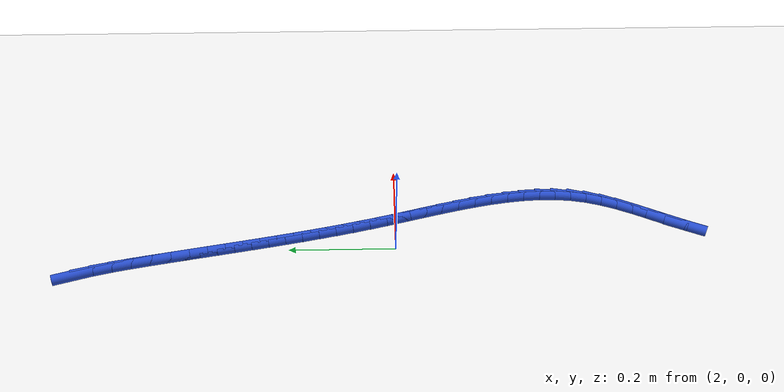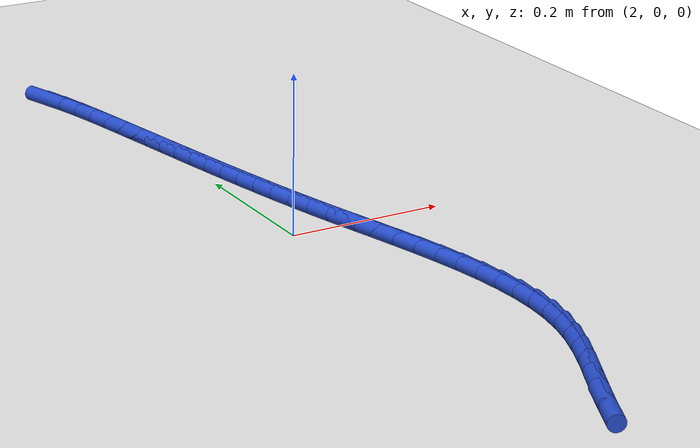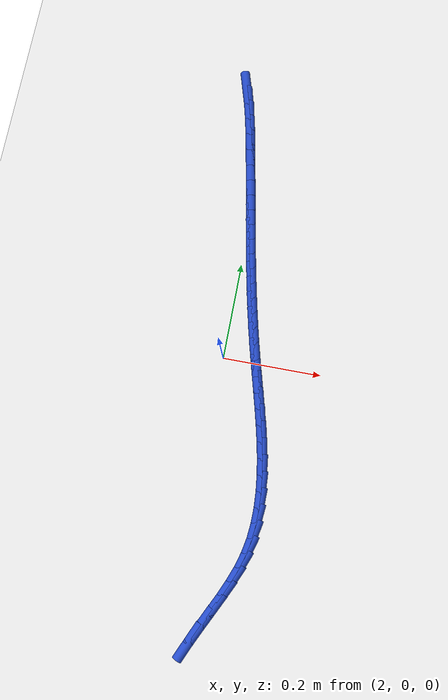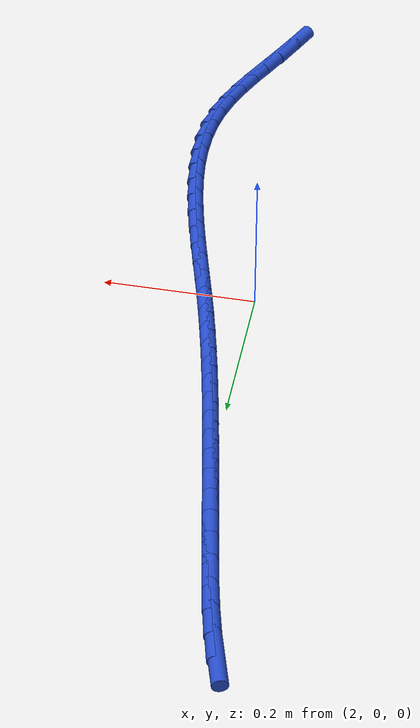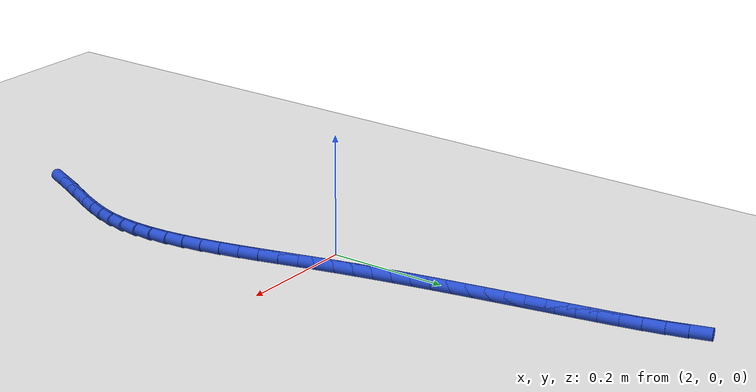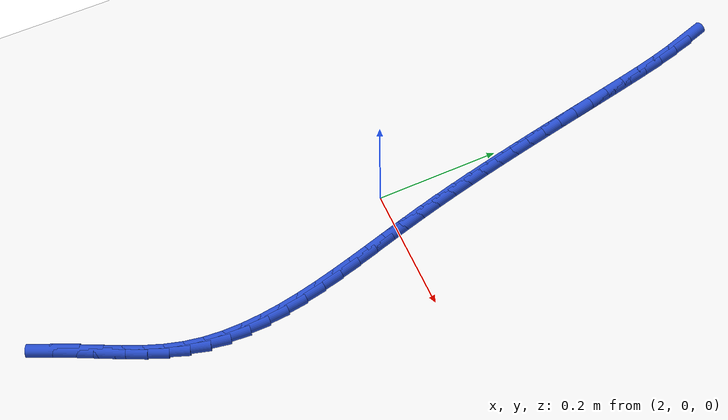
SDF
<sdf version="1.6">
 <world name="default">
  <model name="ground_plane">
   <static>1</static>
   <link name="link">
    <collision name="collision">
     <geometry><plane><normal>0 0 1</normal><size>100 100</size></plane></geometry>
     <surface><friction><ode><mu>100</mu><mu2>50</mu2></ode></friction></surface>
    </collision>
    <visual name="visual">
     <cast_shadows>0</cast_shadows>
     <geometry><plane><normal>0 0 1</normal><size>100 100</size></plane></geometry>
     <material>
      <script><uri>file://media/materials/scripts/gazebo.material</uri><name>Gazebo/WhiteGlow</name></script>
     </material>
    </visual>
   </link>
  </model>
  <model name="line">
   <link name="link_91">
    <pose>1.9389879505668395 0.5864188667553368 0.01 0 1.57 -1.278347036911987</pose>
    <collision name="collision">
     <geometry><cylinder><radius>0.01</radius><length>0.08</length></cylinder></geometry>
    </collision>
    <visual name="visual">
     <material>
      <script><name>Gazebo/Blue</name><uri>file://media/materials/scripts/gazebo.material</uri></script>
     </material>
     <geometry><cylinder><radius>0.01</radius><length>0.08</length></cylinder></geometry>
    </visual>
   </link>
   <link name="link_92">
    <pose>1.9487250232873312 0.5540786135675578 0.01 0 1.57 -1.3229789395118752</pose>
    <collision name="collision">
     <geometry><cylinder><radius>0.01</radius><length>0.08</length></cylinder></geometry>
    </collision>
    <visual name="visual">
     <material>
      <script><name>Gazebo/Blue</name><uri>file://media/materials/scripts/gazebo.material</uri></script>
     </material>
     <geometry><cylinder><radius>0.01</radius><length>0.08</length></cylinder></geometry>
    </visual>
   </link>
   <link name="link_93">
    <pose>1.9571148000112473 0.5209198384724876 0.01 0 1.57 -1.3539986342224388</pose>
    <collision name="collision">
     <geometry><cylinder><radius>0.01</radius><length>0.08</length></cylinder></geometry>
    </collision>
    <visual name="visual">
     <material>
      <script><name>Gazebo/Blue</name><uri>file://media/materials/scripts/gazebo.material</uri></script>
     </material>
     <geometry><cylinder><radius>0.01</radius><length>0.08</length></cylinder></geometry>
    </visual>
   </link>
   <link name="link_94">
    <pose>1.9645049247873123 0.4873679192102942 0.01 0 1.57 -1.3724204868753895</pose>
    <collision name="collision">
     <geometry><cylinder><radius>0.01</radius><length>0.08</length></cylinder></geometry>
    </collision>
    <visual name="visual">
     <material>
      <script><name>Gazebo/Blue</name><uri>file://media/materials/scripts/gazebo.material</uri></script>
     </material>
     <geometry><cylinder><radius>0.01</radius><length>0.08</length></cylinder></geometry>
    </visual>
   </link>
   <link name="link_95">
    <pose>1.9712430416642484 0.453848233521143 0.01 0 1.57 -1.3794987288052705</pose>
    <collision name="collision">
     <geometry><cylinder><radius>0.01</radius><length>0.08</length></cylinder></geometry>
    </collision>
    <visual name="visual">
     <material>
      <script><name>Gazebo/Blue</name><uri>file://media/materials/scripts/gazebo.material</uri></script>
     </material>
     <geometry><cylinder><radius>0.01</radius><length>0.08</length></cylinder></geometry>
    </visual>
   </link>
   <link name="link_96">
    <pose>1.977653616604843 0.4207470042130003 0.01 0 1.57 -1.382131423531816</pose>
    <collision name="collision">
     <geometry><cylinder><radius>0.01</radius><length>0.08</length></cylinder></geometry>
    </collision>
    <visual name="visual">
     <material>
      <script><name>Gazebo/Blue</name><uri>file://media/materials/scripts/gazebo.material</uri></script>
     </material>
     <geometry><cylinder><radius>0.01</radius><length>0.08</length></cylinder></geometry>
    </visual>
   </link>
   <link name="link_97">
    <pose>1.9838789415652713 0.3881427060383085 0.01 0 1.57 -1.3835404762668853</pose>
    <collision name="collision">
     <geometry><cylinder><radius>0.01</radius><length>0.08</length></cylinder></geometry>
    </collision>
    <visual name="visual">
     <material>
      <script><name>Gazebo/Blue</name><uri>file://media/materials/scripts/gazebo.material</uri></script>
     </material>
     <geometry><cylinder><radius>0.01</radius><length>0.08</length></cylinder></geometry>
    </visual>
   </link>
   <link name="link_98">
    <pose>1.9899751997754238 0.3559683495662806 0.01 0 1.57 -1.3836857713616606</pose>
    <collision name="collision">
     <geometry><cylinder><radius>0.01</radius><length>0.08</length></cylinder></geometry>
    </collision>
    <visual name="visual">
     <material>
      <script><name>Gazebo/Blue</name><uri>file://media/materials/scripts/gazebo.material</uri></script>
     </material>
     <geometry><cylinder><radius>0.01</radius><length>0.08</length></cylinder></geometry>
    </visual>
   </link>
   <link name="link_99">
    <pose>1.9959980630692573 0.3241560814607491 0.01 0 1.57 -1.3825226095366727</pose>
    <collision name="collision">
     <geometry><cylinder><radius>0.01</radius><length>0.08</length></cylinder></geometry>
    </collision>
    <visual name="visual">
     <material>
      <script><name>Gazebo/Blue</name><uri>file://media/materials/scripts/gazebo.material</uri></script>
     </material>
     <geometry><cylinder><radius>0.01</radius><length>0.08</length></cylinder></geometry>
    </visual>
   </link>
   <link name="link_100">
    <pose>2.0020032032807262 0.29263804838554486 0.01 0 1.57 -1.3800234249048318</pose>
    <collision name="collision">
     <geometry><cylinder><radius>0.01</radius><length>0.08</length></cylinder></geometry>
    </collision>
    <visual name="visual">
     <material>
      <script><name>Gazebo/Blue</name><uri>file://media/materials/scripts/gazebo.material</uri></script>
     </material>
     <geometry><cylinder><radius>0.01</radius><length>0.08</length></cylinder></geometry>
    </visual>
   </link>
   <link name="link_101">
    <pose>2.0080462922437876 0.26134639700450063 0.01 0 1.57 -1.3761793062768408</pose>
    <collision name="collision">
     <geometry><cylinder><radius>0.01</radius><length>0.08</length></cylinder></geometry>
    </collision>
    <visual name="visual">
     <material>
      <script><name>Gazebo/Blue</name><uri>file://media/materials/scripts/gazebo.material</uri></script>
     </material>
     <geometry><cylinder><radius>0.01</radius><length>0.08</length></cylinder></geometry>
    </visual>
   </link>
   <link name="link_102">
    <pose>2.0141830017923965 0.23021327398144711 0.01 0 1.57 -1.371000981717579</pose>
    <collision name="collision">
     <geometry><cylinder><radius>0.01</radius><length>0.08</length></cylinder></geometry>
    </collision>
    <visual name="visual">
     <material>
      <script><name>Gazebo/Blue</name><uri>file://media/materials/scripts/gazebo.material</uri></script>
     </material>
     <geometry><cylinder><radius>0.01</radius><length>0.08</length></cylinder></geometry>
    </visual>
   </link>
   <link name="link_103">
    <pose>2.020469003760509 0.19917082598021693 0.01 0 1.57 -1.3645191835083599</pose>
    <collision name="collision">
     <geometry><cylinder><radius>0.01</radius><length>0.08</length></cylinder></geometry>
    </collision>
    <visual name="visual">
     <material>
      <script><name>Gazebo/Blue</name><uri>file://media/materials/scripts/gazebo.material</uri></script>
     </material>
     <geometry><cylinder><radius>0.01</radius><length>0.08</length></cylinder></geometry>
    </visual>
   </link>
   <link name="link_104">
    <pose>2.026959969982081 0.16815119966464098 0.01 0 1.57 -1.356784339469159</pose>
    <collision name="collision">
     <geometry><cylinder><radius>0.01</radius><length>0.08</length></cylinder></geometry>
    </collision>
    <visual name="visual">
     <material>
      <script><name>Gazebo/Blue</name><uri>file://media/materials/scripts/gazebo.material</uri></script>
     </material>
     <geometry><cylinder><radius>0.01</radius><length>0.08</length></cylinder></geometry>
    </visual>
   </link>
   <link name="link_105">
    <pose>2.033711572291068 0.13708654169855172 0.01 0 1.57 -1.3478655726079094</pose>
    <collision name="collision">
     <geometry><cylinder><radius>0.01</radius><length>0.08</length></cylinder></geometry>
    </collision>
    <visual name="visual">
     <material>
      <script><name>Gazebo/Blue</name><uri>file://media/materials/scripts/gazebo.material</uri></script>
     </material>
     <geometry><cylinder><radius>0.01</radius><length>0.08</length></cylinder></geometry>
    </visual>
   </link>
   <link name="link_106">
    <pose>2.040779482521426 0.10590899874578016 0.01 0 1.57 -1.3378490320443401</pose>
    <collision name="collision">
     <geometry><cylinder><radius>0.01</radius><length>0.08</length></cylinder></geometry>
    </collision>
    <visual name="visual">
     <material>
      <script><name>Gazebo/Blue</name><uri>file://media/materials/scripts/gazebo.material</uri></script>
     </material>
     <geometry><cylinder><radius>0.01</radius><length>0.08</length></cylinder></geometry>
    </visual>
   </link>
   <link name="link_107">
    <pose>2.0482193725071105 0.07455071747015875 0.01 0 1.57 -1.3268356208044711</pose>
    <collision name="collision">
     <geometry><cylinder><radius>0.01</radius><length>0.08</length></cylinder></geometry>
    </collision>
    <visual name="visual">
     <material>
      <script><name>Gazebo/Blue</name><uri>file://media/materials/scripts/gazebo.material</uri></script>
     </material>
     <geometry><cylinder><radius>0.01</radius><length>0.08</length></cylinder></geometry>
    </visual>
   </link>
   <link name="link_108">
    <pose>2.056086914082078 0.0429438445355184 0.01 0 1.57 -1.314938864861613</pose>
    <collision name="collision">
     <geometry><cylinder><radius>0.01</radius><length>0.08</length></cylinder></geometry>
    </collision>
    <visual name="visual">
     <material>
      <script><name>Gazebo/Blue</name><uri>file://media/materials/scripts/gazebo.material</uri></script>
     </material>
     <geometry><cylinder><radius>0.01</radius><length>0.08</length></cylinder></geometry>
    </visual>
   </link>
   <link name="link_109">
    <pose>2.0644377542669865 0.01102053820125583 0.01 0 1.57 -1.3041430268347685</pose>
    <collision name="collision">
     <geometry><cylinder><radius>0.01</radius><length>0.08</length></cylinder></geometry>
    </collision>
    <visual name="visual">
     <material>
      <script><name>Gazebo/Blue</name><uri>file://media/materials/scripts/gazebo.material</uri></script>
     </material>
     <geometry><cylinder><radius>0.01</radius><length>0.08</length></cylinder></geometry>
    </visual>
   </link>
   <link name="link_110">
    <pose>2.073253374820913 -0.021252384918293944 0.01 0 1.57 -1.3003005810782595</pose>
    <collision name="collision">
     <geometry><cylinder><radius>0.01</radius><length>0.08</length></cylinder></geometry>
    </collision>
    <visual name="visual">
     <material>
      <script><name>Gazebo/Blue</name><uri>file://media/materials/scripts/gazebo.material</uri></script>
     </material>
     <geometry><cylinder><radius>0.01</radius><length>0.08</length></cylinder></geometry>
    </visual>
   </link>
   <link name="link_111">
    <pose>2.082277769014589 -0.053797126865943325 0.01 0 1.57 -1.3043446878150167</pose>
    <collision name="collision">
     <geometry><cylinder><radius>0.01</radius><length>0.08</length></cylinder></geometry>
    </collision>
    <visual name="visual">
     <material>
      <script><name>Gazebo/Blue</name><uri>file://media/materials/scripts/gazebo.material</uri></script>
     </material>
     <geometry><cylinder><radius>0.01</radius><length>0.08</length></cylinder></geometry>
    </visual>
   </link>
   <link name="link_112">
    <pose>2.09120749263329 -0.08651372155385788 0.01 0 1.57 -1.3162396277669441</pose>
    <collision name="collision">
     <geometry><cylinder><radius>0.01</radius><length>0.08</length></cylinder></geometry>
    </collision>
    <visual name="visual">
     <material>
      <script><name>Gazebo/Blue</name><uri>file://media/materials/scripts/gazebo.material</uri></script>
     </material>
     <geometry><cylinder><radius>0.01</radius><length>0.08</length></cylinder></geometry>
    </visual>
   </link>
   <link name="link_113">
    <pose>2.0997391014622946 -0.1193022028942031 0.01 0 1.57 -1.3361880373212016</pose>
    <collision name="collision">
     <geometry><cylinder><radius>0.01</radius><length>0.08</length></cylinder></geometry>
    </collision>
    <visual name="visual">
     <material>
      <script><name>Gazebo/Blue</name><uri>file://media/materials/scripts/gazebo.material</uri></script>
     </material>
     <geometry><cylinder><radius>0.01</radius><length>0.08</length></cylinder></geometry>
    </visual>
   </link>
   <link name="link_114">
    <pose>2.1075691512868806 -0.15206260479914513 0.01 0 1.57 -1.3646186849506605</pose>
    <collision name="collision">
     <geometry><cylinder><radius>0.01</radius><length>0.08</length></cylinder></geometry>
    </collision>
    <visual name="visual">
     <material>
      <script><name>Gazebo/Blue</name><uri>file://media/materials/scripts/gazebo.material</uri></script>
     </material>
     <geometry><cylinder><radius>0.01</radius><length>0.08</length></cylinder></geometry>
    </visual>
   </link>
   <link name="link_115">
    <pose>2.114394197892325 -0.18469496118084758 0.01 0 1.57 -1.402170415309157</pose>
    <collision name="collision">
     <geometry><cylinder><radius>0.01</radius><length>0.08</length></cylinder></geometry>
    </collision>
    <visual name="visual">
     <material>
      <script><name>Gazebo/Blue</name><uri>file://media/materials/scripts/gazebo.material</uri></script>
     </material>
     <geometry><cylinder><radius>0.01</radius><length>0.08</length></cylinder></geometry>
    </visual>
   </link>
   <link name="link_116">
    <pose>2.119910797063906 -0.21709930595147672 0.01 0 1.57 -1.4496607319623975</pose>
    <collision name="collision">
     <geometry><cylinder><radius>0.01</radius><length>0.08</length></cylinder></geometry>
    </collision>
    <visual name="visual">
     <material>
      <script><name>Gazebo/Blue</name><uri>file://media/materials/scripts/gazebo.material</uri></script>
     </material>
     <geometry><cylinder><radius>0.01</radius><length>0.08</length></cylinder></geometry>
    </visual>
   </link>
   <link name="link_117">
    <pose>2.1238155045869 -0.24917567302319787 0.01 0 1.57 -1.5080204434995308</pose>
    <collision name="collision">
     <geometry><cylinder><radius>0.01</radius><length>0.08</length></cylinder></geometry>
    </collision>
    <visual name="visual">
     <material>
      <script><name>Gazebo/Blue</name><uri>file://media/materials/scripts/gazebo.material</uri></script>
     </material>
     <geometry><cylinder><radius>0.01</radius><length>0.08</length></cylinder></geometry>
    </visual>
   </link>
   <link name="link_118">
    <pose>2.1258048762465855 -0.2808240963081771 0.01 0 1.57 1.5634248461238631</pose>
    <collision name="collision">
     <geometry><cylinder><radius>0.01</radius><length>0.08</length></cylinder></geometry>
    </collision>
    <visual name="visual">
     <material>
      <script><name>Gazebo/Blue</name><uri>file://media/materials/scripts/gazebo.material</uri></script>
     </material>
     <geometry><cylinder><radius>0.01</radius><length>0.08</length></cylinder></geometry>
    </visual>
   </link>
   <link name="link_119">
    <pose>2.1255754678282393 -0.3119446097185783 0.01 0 1.57 1.480800830771796</pose>
    <collision name="collision">
     <geometry><cylinder><radius>0.01</radius><length>0.08</length></cylinder></geometry>
    </collision>
    <visual name="visual">
     <material>
      <script><name>Gazebo/Blue</name><uri>file://media/materials/scripts/gazebo.material</uri></script>
     </material>
     <geometry><cylinder><radius>0.01</radius><length>0.08</length></cylinder></geometry>
    </visual>
   </link>
   <link name="link_120">
    <pose>2.12282383511714 -0.34243724716656754 0.01 0 1.57 1.3855831827589489</pose>
    <collision name="collision">
     <geometry><cylinder><radius>0.01</radius><length>0.08</length></cylinder></geometry>
    </collision>
    <visual name="visual">
     <material>
      <script><name>Gazebo/Blue</name><uri>file://media/materials/scripts/gazebo.material</uri></script>
     </material>
     <geometry><cylinder><radius>0.01</radius><length>0.08</length></cylinder></geometry>
    </visual>
   </link>
   <link name="link_121">
    <pose>2.1172470345424084 -0.3722023354114247 0.01 0 1.57 1.2866542081476948</pose>
    <collision name="collision">
     <geometry><cylinder><radius>0.01</radius><length>0.08</length></cylinder></geometry>
    </collision>
    <visual name="visual">
     <material>
      <script><name>Gazebo/Blue</name><uri>file://media/materials/scripts/gazebo.material</uri></script>
     </material>
     <geometry><cylinder><radius>0.01</radius><length>0.08</length></cylinder></geometry>
    </visual>
   </link>
   <link name="link_122">
    <pose>2.1087588687456127 -0.4012669849603697 0.01 0 1.57 1.207057844343933</pose>
    <collision name="collision">
     <geometry><cylinder><radius>0.01</radius><length>0.08</length></cylinder></geometry>
    </collision>
    <visual name="visual">
     <material>
      <script><name>Gazebo/Blue</name><uri>file://media/materials/scripts/gazebo.material</uri></script>
     </material>
     <geometry><cylinder><radius>0.01</radius><length>0.08</length></cylinder></geometry>
    </visual>
   </link>
   <link name="link_123">
    <pose>2.097827502860374 -0.42998257567539044 0.01 0 1.57 1.1516202026391857</pose>
    <collision name="collision">
     <geometry><cylinder><radius>0.01</radius><length>0.08</length></cylinder></geometry>
    </collision>
    <visual name="visual">
     <material>
      <script><name>Gazebo/Blue</name><uri>file://media/materials/scripts/gazebo.material</uri></script>
     </material>
     <geometry><cylinder><radius>0.01</radius><length>0.08</length></cylinder></geometry>
    </visual>
   </link>
   <link name="link_124">
    <pose>2.0850084686009813 -0.45875159171421903 0.01 0 1.57 1.1198556191753313</pose>
    <collision name="collision">
     <geometry><cylinder><radius>0.01</radius><length>0.08</length></cylinder></geometry>
    </collision>
    <visual name="visual">
     <material>
      <script><name>Gazebo/Blue</name><uri>file://media/materials/scripts/gazebo.material</uri></script>
     </material>
     <geometry><cylinder><radius>0.01</radius><length>0.08</length></cylinder></geometry>
    </visual>
   </link>
   <link name="link_125">
    <pose>2.0708572976817248 -0.48797651723458635 0.01 0 1.57 1.110181789348012</pose>
    <collision name="collision">
     <geometry><cylinder><radius>0.01</radius><length>0.08</length></cylinder></geometry>
    </collision>
    <visual name="visual">
     <material>
      <script><name>Gazebo/Blue</name><uri>file://media/materials/scripts/gazebo.material</uri></script>
     </material>
     <geometry><cylinder><radius>0.01</radius><length>0.08</length></cylinder></geometry>
    </visual>
   </link>
   <link name="link_126">
    <pose>2.0559295218168914 -0.5180598363942244 0.01 0 1.57 1.1205926127177719</pose>
    <collision name="collision">
     <geometry><cylinder><radius>0.01</radius><length>0.08</length></cylinder></geometry>
    </collision>
    <visual name="visual">
     <material>
      <script><name>Gazebo/Blue</name><uri>file://media/materials/scripts/gazebo.material</uri></script>
     </material>
     <geometry><cylinder><radius>0.01</radius><length>0.08</length></cylinder></geometry>
    </visual>
   </link>
   <link name="link_127">
    <pose>2.0407806727207722 -0.5494040333508626 0.01 0 1.57 1.1475133266080555</pose>
    <collision name="collision">
     <geometry><cylinder><radius>0.01</radius><length>0.08</length></cylinder></geometry>
    </collision>
    <visual name="visual">
     <material>
      <script><name>Gazebo/Blue</name><uri>file://media/materials/scripts/gazebo.material</uri></script>
     </material>
     <geometry><cylinder><radius>0.01</radius><length>0.08</length></cylinder></geometry>
    </visual>
   </link>
  </model>
 </world>
</sdf>
